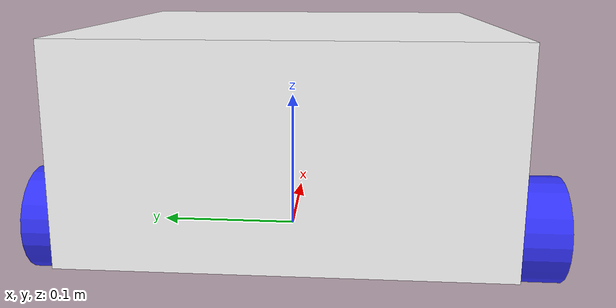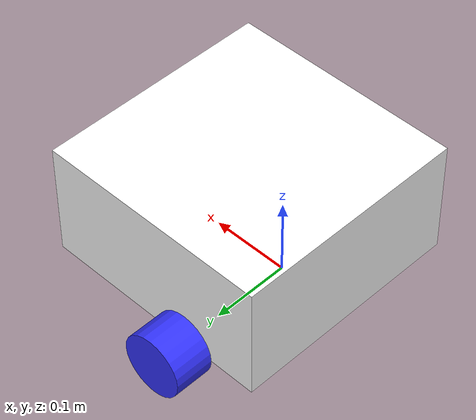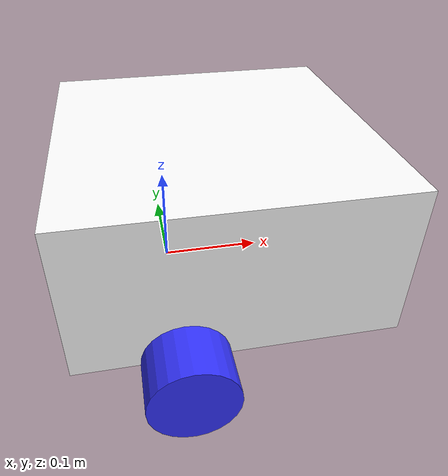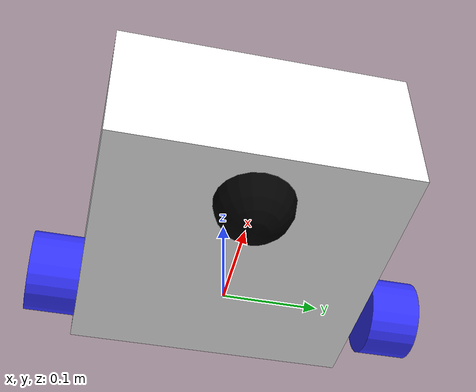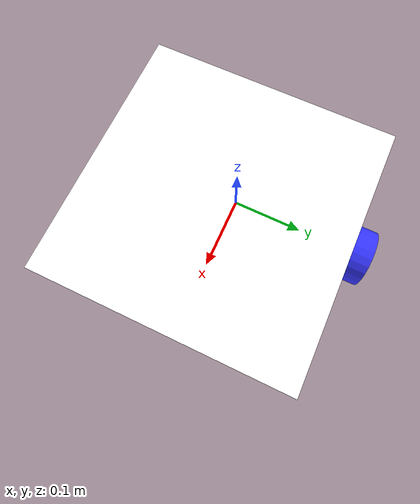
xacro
<?xml version="1.0"?>
<robot xmlns:xacro="http://www.ros.org/wiki/xacro" >

    <xacro:include filename="inertial_macros.xacro"/>

    <material  name="white">
        <color rgba="1 1 1 1"/>
    </material>

    <material  name="orange">
        <color rgba="1 0.3 0.1 1"/>
    </material>

    <material  name="blue">
        <color rgba="0.2 0.2 1 1"/>

    </material>

    <material  name="black">
        <color rgba="0 0 0 1"/>
    </material>

    <material  name="red">
        <color rgba="1 0 0 1"/>
    </material>

    <!-- orientation is front = +x left = +y up = +z-->
    <!-- BASE LINK -->

    <link name="base_link">

    </link>

    <!-- BASE FOOTPRINT LINK-->
    <joint name="base_footprint_joint" type="fixed">
        <parent link="base_link"/>
        <child link="base_footprint"/>
        <origin xyz="0.0 0.0 0.0" rpy="0.0 0.0 0.0"/>

    </joint>

    <link name="base_footprint">

    </link>

    <!-- CHASSIS LINK-->

    <joint name="chassis_join" type="fixed">
        <parent link="base_link"/>
        <child link="chassis"/>     <!-- Why does this one not have a white arrow, could cause an error -->
        <origin xyz="-0.1 0.0 0.0"/>

    </joint>

    <link name="chassis">
        <visual>
            <origin xyz="0.15 0.0 0.075" rpy="0.0 0.0 0.0"/>
            <geometry>
                <box size="0.3 0.3 0.15"/>
            </geometry>
            <material name="white"/>
        </visual>
        <collision>
            <origin xyz="0.15 0.0 0.075" rpy="0.0 0.0 0.0"/>
            <geometry>
                <box size="0.3 0.3 0.15"/>
            </geometry>
        </collision>
        <xacro:inertial_box mass="0.5" x="0.3" y="0.3" z="0.15">
            <origin xyz="0.15 0 0.075" rpy="0 0 0"/>
        </xacro:inertial_box>

    </link>
    <gazebo reference ="chassis">
        <material> Gazebe/White </material>
    </gazebo>

    <!-- LEFT WHEEL LINK -->

    <joint name="left_wheel_joint" type="continuous">
        <parent link="base_link"/>
        <child link="left_wheel"/>
        <origin xyz="0 0.175 0.0" rpy="-${pi/2} 0.0 0.0"/>
        <axis xyz="0.0 0.0 1"/>

    </joint>

    <link name="left_wheel">
        <visual>
            <geometry>
                <cylinder radius="0.04" length="0.05"/>
            </geometry>
            <material name="blue"/>
        </visual>
        <collision>
           <geometry>
                <cylinder radius="0.04" length="0.05"/>
            </geometry>
        </collision>
        <xacro:inertial_cylinder mass="0.1" length="0.05" radius="0.05">
            <origin xyz="0 0 0" rpy="0 0 0"/>
        </xacro:inertial_cylinder>
    </link>

    <gazebo reference ="left_wheel">
        <material> Gazebo/Blue </material>
    </gazebo>

    <!-- RIGHT WHEEL LINK -->

    <joint name="right_wheel_joint" type="continuous">
        <parent link="base_link"/>
        <child link="right_wheel"/>
        <origin xyz="0 -0.175 0.0" rpy="${pi/2} 0.0 0.0"/>
        <axis xyz="0.0 0.0 -1"/>

    </joint>

    <link name="right_wheel">
        <visual>
            <geometry>
                <cylinder radius="0.04" length="0.05"/>
            </geometry>
            <material name="blue"/>
        </visual>
        <collision>
            <geometry>
                <cylinder radius="0.04" length="0.05"/>
            </geometry>
        </collision>
        <xacro:inertial_cylinder mass="0.1" length="0.05" radius="0.05">
            <origin xyz="0 0 0" rpy="0 0 0"/>
        </xacro:inertial_cylinder>
    </link>

    <gazebo reference ="right_wheel">
        <material> Gazebo/Blue </material>
    </gazebo>

    <!--CASTER WHEEL-->
    <joint name="caster_wheel_joint" type="fixed">
        <parent link="chassis"/>
        <child link="caster_wheel"/>
        <origin xyz="0.24 0.0 0.0" rpy="0.0 0.0 0.0"/>

    </joint>

    <link name="caster_wheel">
        <visual>
            <geometry>
                <sphere radius="0.04"/>
            </geometry>
            <material name="black"/>
        </visual>
        <collision>
             <geometry>
                <sphere radius="0.04"/>
            </geometry>
        </collision>
        <xacro:inertial_sphere mass="0.1" radius="0.04">
            <origin xyz="0 0 0" rpy="0 0 0"/>
        </xacro:inertial_sphere>
    </link>

    <gazebo reference ="caster_wheel">
        <material> Gazebo/Black </material>
        <mu1 value="0.001"/>
        <mu2 value="0.001"/>
    </gazebo>

</robot>
